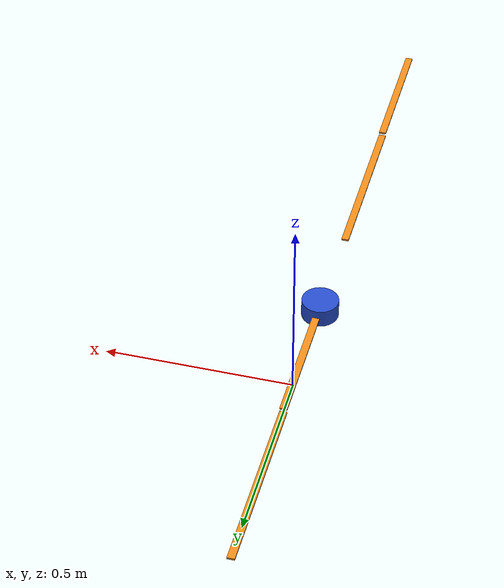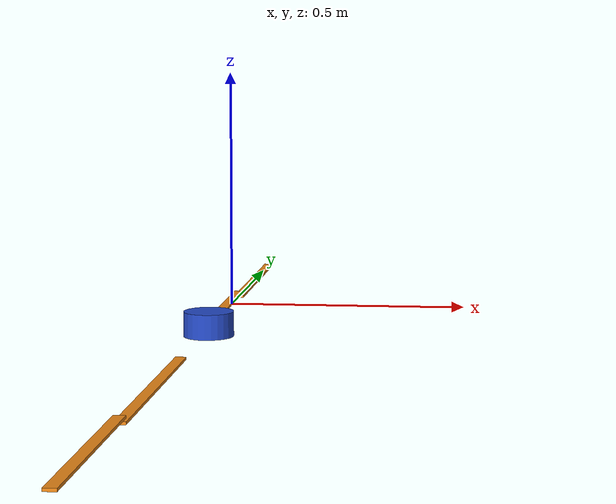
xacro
<?xml version="1.0"?>

<robot name="pantograph" xmlns:xacro="http://www.ros.org/wiki/xacro">

	<!-- Constants for robot dimensions -->
	<xacro:property name="PI" value="3.1415926535897931"/>
	<xacro:property name="DEG2RAD" value="0.017453292519943295"/>

    <!-- Kinematics parameters -->
    <xacro:property name="base_separation" value="1.2" />
    <xacro:property name="link_length_1" value="0.5" />
    <xacro:property name="link_length_2" value="0.4" />
    <xacro:property name="link_length_3" value="0.4" />
    <xacro:property name="link_length_4" value="0.5" />

    <!-- Link 1 geometry and inertial parameters -->
    <xacro:property name="link_mass_1" value="0.3" />
	<xacro:property name="link_width_1" value="0.02" />
	<xacro:property name="link_height_1" value="0.005" />

    <!-- Link 2 geometry and inertial parameters -->
    <xacro:property name="link_mass_2" value="0.3" />
	<xacro:property name="link_width_2" value="0.02" />
	<xacro:property name="link_height_2" value="0.005" />

    <!-- Link 3 geometry and inertial parameters -->
    <xacro:property name="link_mass_3" value="0.3" />
	<xacro:property name="link_width_3" value="0.02" />
	<xacro:property name="link_height_3" value="0.005" />

    <!-- Link 4 geometry and inertial parameters -->
    <xacro:property name="link_mass_4" value="0.3" />
	<xacro:property name="link_width_4" value="0.02" />
	<xacro:property name="link_height_4" value="0.005" />

    <!-- Striker geometry -->
	<xacro:property name="stricker_mass" value="0.1" /> <!-- mass of a single wheel -->
	<xacro:property name="stricker_radius" value="0.05" /> <!-- radius of the wheels -->
	<xacro:property name="stricker_height" value="0.05" /> <!-- thickness of the wheels -->

    <!-- Other parameters -->
	<xacro:property name="joint_damping" value="0.1" /> <!-- damping of all joints -->

	<!-- Import Rviz colors -->
	<xacro:include filename="$(find pantograph_description)/urdf/materials.xacro" />

    <!-- Left two-link manipulator -->
    <link name="world" />
    <joint name="ground_joint" type="fixed">
		<parent link="world"/>
		<child link="base_link"/>
		<origin xyz="0 0 0" rpy="0 0 0"/>
	</joint>
    <link name="base_link" />

    <link name="left_link_1">
    	<collision>
			<origin xyz="0 ${link_length_1/2} 0" rpy="0 0 0"/>
			<geometry>
				<box size="${link_width_1} ${link_length_1} ${link_height_1}"/>
			</geometry>
		</collision>
		<visual>
			<origin xyz="0 ${link_length_1/2} 0" rpy="0 0 0"/>
			<geometry>
				<box size="${link_width_1} ${link_length_1} ${link_height_1}"/>
			</geometry>
			<material name="orange"/>
		</visual>
		<inertial>
			<origin xyz="0 ${link_length_1/2} 0" rpy="0 0 0"/>
			<mass value="${link_mass_1}"/>
			<inertia ixx="${link_mass_1 / 12.0 * (link_length_1*link_length_1 + link_height_1*link_height_1)}" ixy="0.0" ixz="0.0"
					 iyy="${link_mass_1 / 12.0 * (link_width_1*link_width_1 + link_height_1*link_height_1)}" iyz="0.0"
					 izz="${link_mass_1 / 12.0 * (link_length_1*link_length_1 + link_width_1*link_width_1)}"/>
		</inertial>
	</link>
    <joint name="theta1" type="continuous">
		<origin xyz="0 ${base_separation/2} 0" rpy="0 0 ${-PI}"/>
		<parent link="world"/>
		<child link="left_link_1"/>
        <axis xyz="0 0 1" />
	</joint>

    <link name="left_link_2">
    	<collision>
			<origin xyz="0 ${link_length_2/2} 0" rpy="0 0 0"/>
			<geometry>
				<box size="${link_width_2} ${link_length_2} ${link_height_2}"/>
			</geometry>
		</collision>
		<visual>
			<origin xyz="0 ${link_length_2/2} 0" rpy="0 0 0"/>
			<geometry>
				<box size="${link_width_2} ${link_length_2} ${link_height_2}"/>
			</geometry>
			<material name="orange"/>
		</visual>
		<inertial>
			<origin xyz="0 ${link_length_2/2} 0" rpy="0 0 0"/>
			<mass value="${link_mass_2}"/>
			<inertia ixx="${link_mass_2 / 12.0 * (link_length_2*link_length_2 + link_height_2*link_height_2)}" ixy="0.0" ixz="0.0"
					 iyy="${link_mass_2 / 12.0 * (link_width_2*link_width_2 + link_height_2*link_height_2)}" iyz="0.0"
					 izz="${link_mass_2 / 12.0 * (link_length_2*link_length_2 + link_width_2*link_width_2)}"/>
		</inertial>
	</link>
    <joint name="theta2" type="continuous">
        <origin xyz="0 ${link_length_1} ${link_height_1+link_height_2}" rpy="0 0 0"/>
		<parent link="left_link_1"/>
		<child link="left_link_2"/>
		<axis xyz="0 0 1" />
	</joint>

    <!-- Right two-link manipulator -->
    <link name="right_link_1">
    	<collision>
			<origin xyz="0 ${link_length_4/2} 0" rpy="0 0 0"/>
			<geometry>
				<box size="${link_width_4} ${link_length_4} ${link_height_4}"/>
			</geometry>
		</collision>
		<visual>
			<origin xyz="0 ${link_length_4/2} 0" rpy="0 0 0"/>
			<geometry>
				<box size="${link_width_4} ${link_length_4} ${link_height_4}"/>
			</geometry>
			<material name="orange"/>
		</visual>
		<inertial>
			<origin xyz="0 ${link_length_4/2} 0" rpy="0 0 0"/>
			<mass value="${link_mass_4}"/>
			<inertia ixx="${link_mass_4 / 12.0 * (link_length_4*link_length_4 + link_height_4*link_height_4)}" ixy="0.0" ixz="0.0"
					 iyy="${link_mass_4 / 12.0 * (link_width_4*link_width_4 + link_height_4*link_height_4)}" iyz="0.0"
					 izz="${link_mass_4 / 12.0 * (link_length_4*link_length_4 + link_width_4*link_width_4)}"/>
		</inertial>
	</link>
    <joint name="theta4" type="continuous">
		<origin xyz="0 ${-base_separation/2} 0" rpy="0 0 ${PI}"/>
		<parent link="world"/>
		<child link="right_link_1"/>
        <axis xyz="0 0 1" />
	</joint>

    <link name="right_link_2">
    	<collision>
			<origin xyz="0 ${link_length_3/2} 0" rpy="0 0 0"/>
			<geometry>
				<box size="${link_width_3} ${link_length_3} ${link_height_3}"/>
			</geometry>
		</collision>
		<visual>
			<origin xyz="0 ${link_length_3/2} 0" rpy="0 0 0"/>
			<geometry>
				<box size="${link_width_3} ${link_length_3} ${link_height_3}"/>
			</geometry>
			<material name="orange"/>
		</visual>
		<inertial>
			<origin xyz="0 ${link_length_3/2} 0" rpy="0 0 0"/>
			<mass value="${link_mass_3}"/>
			<inertia ixx="${link_mass_3 / 12.0 * (link_length_3*link_length_3 + link_height_3*link_height_3)}" ixy="0.0" ixz="0.0"
					 iyy="${link_mass_3 / 12.0 * (link_width_3*link_width_3 + link_height_3*link_height_3)}" iyz="0.0"
					 izz="${link_mass_3 / 12.0 * (link_length_3*link_length_3 + link_width_3*link_width_3)}"/>
		</inertial>
	</link>
    <joint name="theta3" type="continuous">
        <origin xyz="0 ${link_length_4} ${link_height_3+link_height_4}" rpy="0 0 0"/>
		<parent link="right_link_1"/>
		<child link="right_link_2"/>
		<axis xyz="0 0 1" />
	</joint>

    <!-- Striker -->
    <link name="striker_link">
		<collision>
			<origin xyz="0 0 0" rpy="0 0 0"/>
			<geometry>
				<cylinder radius="${stricker_radius}" length="${stricker_height}"/>
			</geometry>
		</collision>
		<visual>
  			<origin xyz="0 0 0" rpy="0 0 0"/>
			<geometry>
				<cylinder radius="${stricker_radius}" length="${stricker_height}"/>
			</geometry>
			<material name="blue"/>
		</visual>
		<inertial>
  			<origin xyz="0 0 0" rpy="0 0 0"/>
			<mass value="${stricker_mass}"/>
			<inertia ixx="${stricker_mass / 12.0 * (3*stricker_radius*stricker_radius + stricker_height*stricker_height)}" ixy="0.0" ixz="0.0"
					 iyy="${stricker_mass / 12.0 * (3*stricker_radius*stricker_radius + stricker_height*stricker_height)}" iyz="0.0"
					 izz="${stricker_mass / 2.0 * stricker_radius * stricker_radius}"/>
		</inertial>
	</link>
    <joint name="stricker_joint" type="fixed">
        <origin xyz="0 ${link_length_2} 0" rpy="0 0 0"/>
		<parent link="left_link_2"/>
		<child link="striker_link"/>
		<axis xyz="0 0 1" />
	</joint>

    <!-- For ros_control -->
	<transmission name="theta1_trans">
		<type>transmission_interface/SimpleTransmission</type>
		<joint name="theta1">
			<hardwareInterface>hardware_interface/VelocityJointInterface</hardwareInterface>
		</joint>
		<actuator name="theta1_mot">
			<mechanicalReduction>1</mechanicalReduction>
		</actuator>
	</transmission>
    <transmission name="theta4_trans">
		<type>transmission_interface/SimpleTransmission</type>
		<joint name="theta4">
			<hardwareInterface>hardware_interface/VelocityJointInterface</hardwareInterface>
		</joint>
		<actuator name="theta4_mot">
			<mechanicalReduction>1</mechanicalReduction>
		</actuator>
	</transmission>

</robot>
